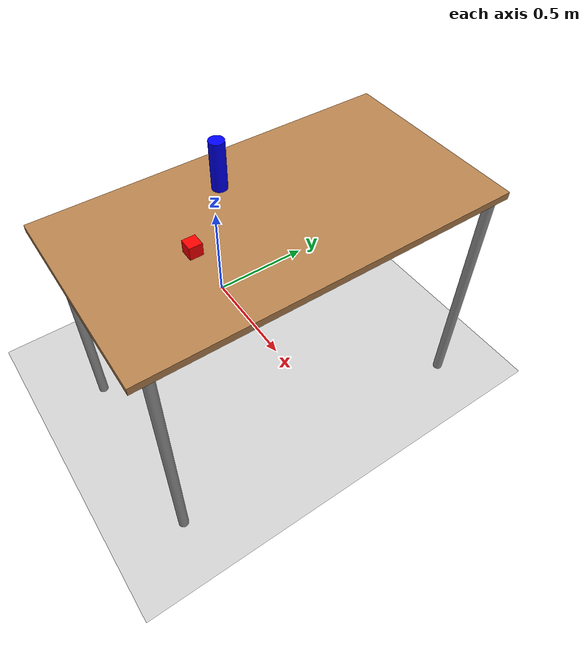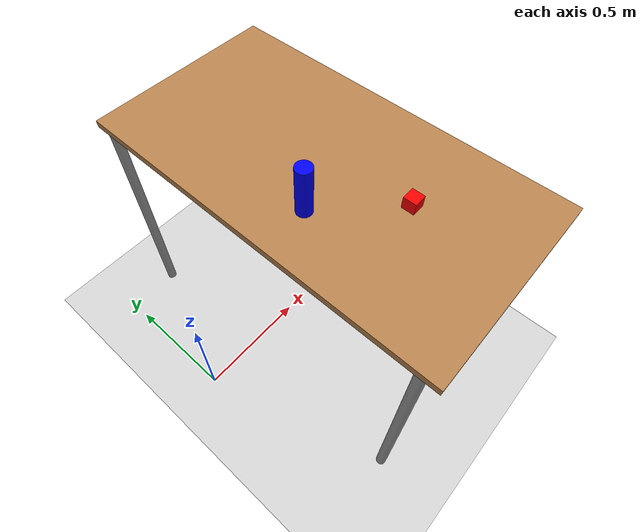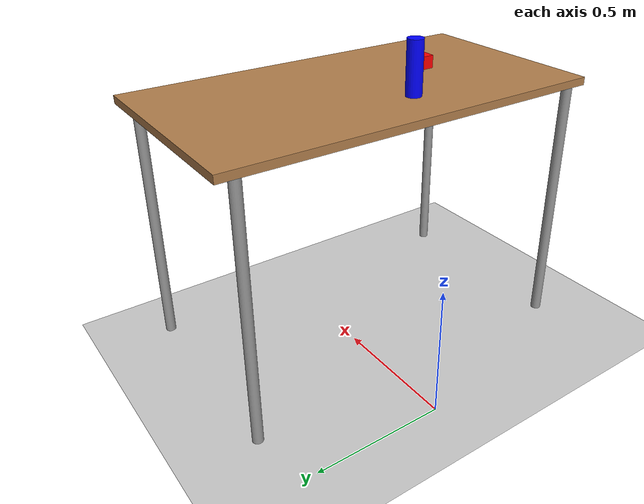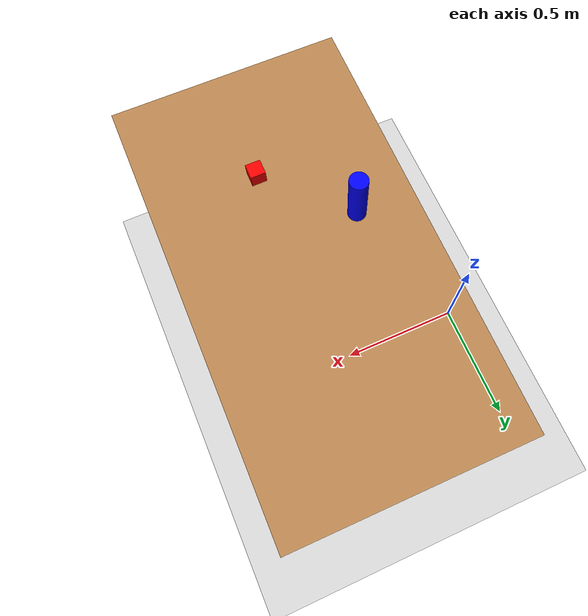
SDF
<sdf version="1.7">
 <world name="default">
  <plugin name="link_attacher_plugin" filename="libgazebo_ros_link_attacher.so"/>
  <light name="sun" type="directional">
   <pose>0 0 10 0 -0 0</pose>
   <diffuse>0.8 0.8 0.8 1</diffuse>
   <specular>0.2 0.2 0.2 1</specular>
   <attenuation>
    <range>1000</range>
    <constant>0.9</constant>
    <linear>0.01</linear>
    <quadratic>0.001</quadratic>
   </attenuation>
   <direction>-0.5 0.1 -0.9</direction>
   <spot><inner_angle>0</inner_angle><outer_angle>0</outer_angle><falloff>0</falloff></spot>
  </light>
  <model name="ground_plane">
   <static>1</static>
   <link name="link">
    <collision name="collision">
     <geometry><plane><normal>0 0 1</normal><size>100 100</size></plane></geometry>
     <surface>
      <contact><collide_bitmask>65535</collide_bitmask></contact>
      <friction><ode><mu>100</mu><mu2>50</mu2></ode></friction>
     </surface>
    </collision>
    <visual name="visual">
     <cast_shadows>0</cast_shadows>
     <geometry><plane><normal>0 0 1</normal><size>100 100</size></plane></geometry>
     <material>
      <script><uri>file://media/materials/scripts/gazebo.material</uri><name>Gazebo/Grey</name></script>
     </material>
    </visual>
   </link>
  </model>
  <gravity>0 0 -9.8</gravity>
  <magnetic_field>6e-06 2.3e-05 -4.2e-05</magnetic_field>
  <atmosphere type="adiabatic"/>
  <physics type="ode">
   <max_step_size>0.001</max_step_size>
   <real_time_factor>1</real_time_factor>
   <real_time_update_rate>1000</real_time_update_rate>
  </physics>
  <scene><ambient>0.4 0.4 0.4 1</ambient><background>0.7 0.7 0.7 1</background><shadows>1</shadows></scene>
  <spherical_coordinates>
   <surface_model>EARTH_WGS84</surface_model>
   <latitude_deg>0</latitude_deg>
   <longitude_deg>0</longitude_deg>
   <elevation>0</elevation>
   <heading_deg>0</heading_deg>
  </spherical_coordinates>
  <model name="table">
   <static>1</static>
   <link name="link">
    <collision name="surface">
     <pose>0 0 1 0 -0 0</pose>
     <geometry><box><size>1.5 0.8 0.03</size></box></geometry>
     <surface><friction><ode><mu>0.6</mu><mu2>0.6</mu2></ode></friction></surface>
    </collision>
    <visual name="visual1">
     <pose>0 0 1 0 -0 0</pose>
     <geometry><box><size>1.5 0.8 0.03</size></box></geometry>
     <material>
      <script><uri>file://media/materials/scripts/gazebo.material</uri><name>Gazebo/Wood</name></script>
     </material>
    </visual>
    <collision name="front_left_leg">
     <pose>0.68 0.38 0.5 0 -0 0</pose>
     <geometry><cylinder><radius>0.02</radius><length>1</length></cylinder></geometry>
    </collision>
    <visual name="front_left_leg">
     <pose>0.68 0.38 0.5 0 -0 0</pose>
     <geometry><cylinder><radius>0.02</radius><length>1</length></cylinder></geometry>
     <material>
      <script><uri>file://media/materials/scripts/gazebo.material</uri><name>Gazebo/Grey</name></script>
     </material>
    </visual>
    <collision name="front_right_leg">
     <pose>0.68 -0.38 0.5 0 -0 0</pose>
     <geometry><cylinder><radius>0.02</radius><length>1</length></cylinder></geometry>
    </collision>
    <visual name="front_right_leg">
     <pose>0.68 -0.38 0.5 0 -0 0</pose>
     <geometry><cylinder><radius>0.02</radius><length>1</length></cylinder></geometry>
     <material>
      <script><uri>file://media/materials/scripts/gazebo.material</uri><name>Gazebo/Grey</name></script>
     </material>
    </visual>
    <collision name="back_right_leg">
     <pose>-0.68 -0.38 0.5 0 -0 0</pose>
     <geometry><cylinder><radius>0.02</radius><length>1</length></cylinder></geometry>
    </collision>
    <visual name="back_right_leg">
     <pose>-0.68 -0.38 0.5 0 -0 0</pose>
     <geometry><cylinder><radius>0.02</radius><length>1</length></cylinder></geometry>
     <material>
      <script><uri>file://media/materials/scripts/gazebo.material</uri><name>Gazebo/Grey</name></script>
     </material>
    </visual>
    <collision name="back_left_leg">
     <pose>-0.68 0.38 0.5 0 -0 0</pose>
     <geometry><cylinder><radius>0.02</radius><length>1</length></cylinder></geometry>
    </collision>
    <visual name="back_left_leg">
     <pose>-0.68 0.38 0.5 0 -0 0</pose>
     <geometry><cylinder><radius>0.02</radius><length>1</length></cylinder></geometry>
     <material>
      <script><uri>file://media/materials/scripts/gazebo.material</uri><name>Gazebo/Grey</name></script>
     </material>
    </visual>
   </link>
   <pose>0.615125 -0.096531 0 0 -0 1.56564</pose>
  </model>
  <model name="blue_cylinder">
   <link name="link_0">
    <inertial>
     <mass>0.2</mass>
     <inertia>
      <ixx>0.0291667</ixx>
      <ixy>0</ixy>
      <ixz>0</ixz>
      <iyy>0.0291667</iyy>
      <iyz>0</iyz>
      <izz>0.025</izz>
     </inertia>
    </inertial>
    <visual name="visual">
     <geometry><cylinder><radius>0.03</radius><length>0.2</length></cylinder></geometry>
     <material>
      <lighting>1</lighting>
      <script><uri>file://media/materials/scripts/gazebo.material</uri><name>Gazebo/Grey</name></script>
      <shader type="pixel"><normal_map>__default__</normal_map></shader>
      <ambient>0 0 1 1</ambient>
      <diffuse>0 0 1 1</diffuse>
      <specular>0 0 1 1</specular>
      <emissive>0 0 0 1</emissive>
     </material>
    </visual>
    <collision name="collision">
     <geometry><cylinder><radius>0.03</radius><length>0.2</length></cylinder></geometry>
     <surface>
      <friction>
       <ode><mu>1</mu><mu2>1</mu2><fdir1>0 0 0</fdir1><slip1>0</slip1><slip2>0</slip2></ode>
       <torsional>
        <coefficient>1</coefficient>
        <patch_radius>0</patch_radius>
        <surface_radius>0</surface_radius>
        <use_patch_radius>1</use_patch_radius>
        <ode><slip>0</slip></ode>
       </torsional>
      </friction>
      <bounce><restitution_coefficient>0</restitution_coefficient><threshold>1e+06</threshold></bounce>
      <contact>
       <collide_without_contact>0</collide_without_contact>
       <collide_without_contact_bitmask>1</collide_without_contact_bitmask>
       <collide_bitmask>1</collide_bitmask>
       <ode>
        <soft_cfm>0</soft_cfm>
        <soft_erp>0.2</soft_erp>
        <kp>1e+13</kp>
        <kd>1</kd>
        <max_vel>0.01</max_vel>
        <min_depth>0</min_depth>
       </ode>
       <bullet>
        <split_impulse>1</split_impulse>
        <split_impulse_penetration_threshold>-0.01</split_impulse_penetration_threshold>
        <soft_cfm>0</soft_cfm>
        <soft_erp>0.2</soft_erp>
        <kp>1e+13</kp>
        <kd>1</kd>
       </bullet>
      </contact>
     </surface>
    </collision>
   </link>
   <static>0</static>
   <pose>0.412591 -0.189594 1.115 -7.8e-05 5.9e-05 -1.1e-05</pose>
  </model>
  <model name="red_box">
   <link name="link_1">
    <inertial>
     <mass>0.2</mass>
     <inertia>
      <ixx>0.0333333</ixx>
      <ixy>0</ixy>
      <ixz>0</ixz>
      <iyy>0.0333333</iyy>
      <iyz>0</iyz>
      <izz>0.0333333</izz>
     </inertia>
    </inertial>
    <visual name="visual">
     <geometry><box><size>0.05 0.05 0.05</size></box></geometry>
     <material>
      <lighting>1</lighting>
      <script><uri>file://media/materials/scripts/gazebo.material</uri><name>Gazebo/Grey</name></script>
      <shader type="pixel"><normal_map>__default__</normal_map></shader>
      <ambient>1 0 0 1</ambient>
      <diffuse>1 0 0 1</diffuse>
      <specular>1 0 0 1</specular>
      <emissive>0 0 0 1</emissive>
     </material>
    </visual>
    <collision name="collision">
     <geometry><box><size>0.05 0.05 0.05</size></box></geometry>
     <surface>
      <friction>
       <ode><mu>1</mu><mu2>1</mu2><fdir1>0 0 0</fdir1><slip1>0</slip1><slip2>0</slip2></ode>
       <torsional>
        <coefficient>1</coefficient>
        <patch_radius>0</patch_radius>
        <surface_radius>0</surface_radius>
        <use_patch_radius>1</use_patch_radius>
        <ode><slip>0</slip></ode>
       </torsional>
      </friction>
      <bounce><restitution_coefficient>0</restitution_coefficient><threshold>1e+06</threshold></bounce>
      <contact>
       <collide_without_contact>0</collide_without_contact>
       <collide_without_contact_bitmask>1</collide_without_contact_bitmask>
       <collide_bitmask>1</collide_bitmask>
       <ode>
        <soft_cfm>0</soft_cfm>
        <soft_erp>0.2</soft_erp>
        <kp>1e+13</kp>
        <kd>1</kd>
        <max_vel>0.01</max_vel>
        <min_depth>0</min_depth>
       </ode>
       <bullet>
        <split_impulse>1</split_impulse>
        <split_impulse_penetration_threshold>-0.01</split_impulse_penetration_threshold>
        <soft_cfm>0</soft_cfm>
        <soft_erp>0.2</soft_erp>
        <kp>1e+13</kp>
        <kd>1</kd>
       </bullet>
      </contact>
     </surface>
    </collision>
   </link>
   <static>0</static>
   <pose>0.653367 -0.435841 1.04 8e-06 4.5e-05 1.6e-05</pose>
  </model>
 </world>
</sdf>
